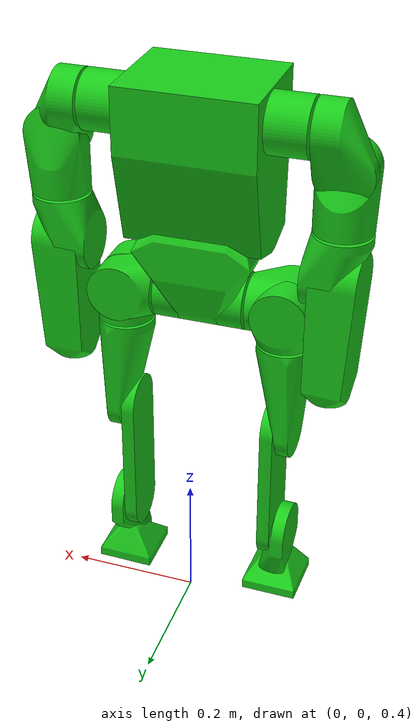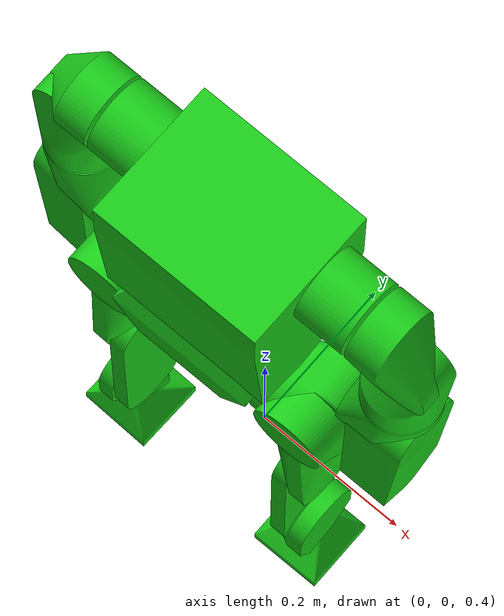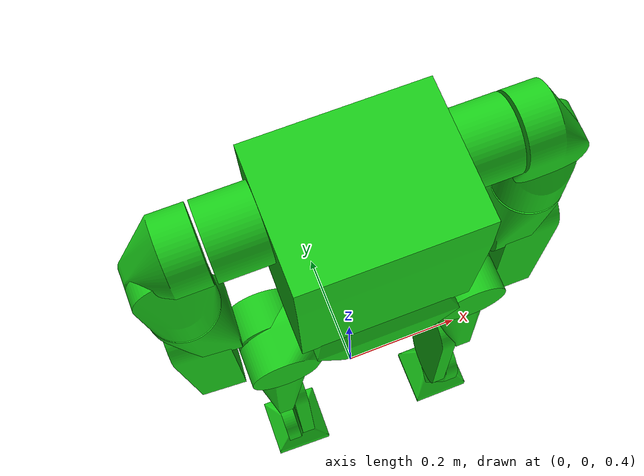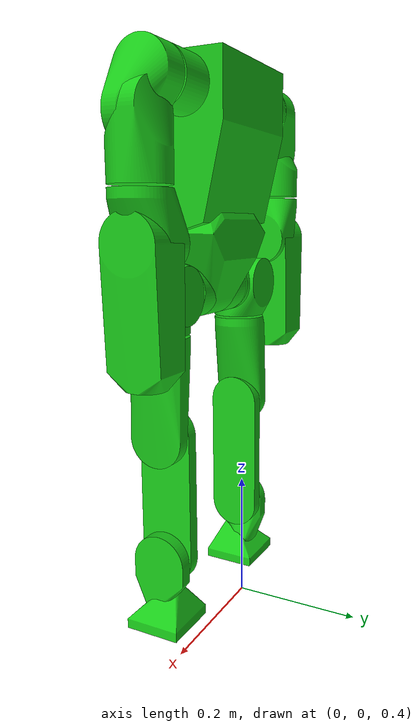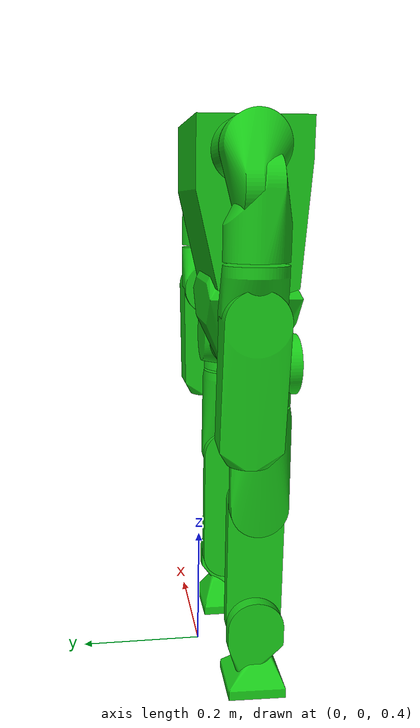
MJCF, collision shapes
<mujoco model="MuJoCo Model">
  <compiler angle="radian" meshdir="assets/"/>
  <size nconmax="4096" njmax="20000"/>

  <asset>
    <mesh name="Ankle" file="Ankle.stl"/>
    <mesh name="Ankle_collision" file="Ankle_collision.stl"/>
    <mesh name="Foot" file="Foot.stl"/>
    <mesh name="Foot_collision" file="Foot_collision.stl"/>
    <mesh name="Hip" file="Hip.stl"/>
    <mesh name="Hip_collision" file="Hip_collision.stl"/>
    <mesh name="Hip_Pitch" file="Hip_Pitch.stl"/>
    <mesh name="Hip_Pitch_collision" file="Hip_Pitch_collision.stl"/>
    <mesh name="Hip_Roll" file="Hip_Roll.stl"/>
    <mesh name="Hip_Roll_collision" file="Hip_Roll_collision.stl"/>
    <mesh name="Part_1" file="Part_1.stl"/>
    <mesh name="Part_1_collision" file="Part_1_collision.stl"/>
    <mesh name="Part_2" file="Part_2.stl"/>
    <mesh name="Part_2_collision" file="Part_2_collision.stl"/>
    <mesh name="Part_2_1" file="Part_2_1.stl"/>
    <mesh name="Part_2_1_collision" file="Part_2_1_collision.stl"/>
    <mesh name="Part_3" file="Part_3.stl"/>
    <mesh name="Part_3_collision" file="Part_3_collision.stl"/>
    <mesh name="Part_4" file="Part_4.stl"/>
    <mesh name="Part_4_collision" file="Part_4_collision.stl"/>
    <mesh name="Part_5" file="Part_5.stl"/>
    <mesh name="Part_5_collision" file="Part_5_collision.stl"/>
    <mesh name="Pelvis" file="Pelvis.stl"/>
    <mesh name="Pelvis_collision" file="Pelvis_collision.stl"/>
    <mesh name="Shin" file="Shin.stl"/>
    <mesh name="Shin_collision" file="Shin_collision.stl"/>
    <mesh name="Thigh" file="Thigh.stl"/>
    <mesh name="Thigh_collision" file="Thigh_collision.stl"/>
  </asset>

  <worldbody>
    <body name="base" pos="0 0 1">
      <joint name="base_free" type="free"/>
      <frame name="_mount">
        <body name="root">
          <body name="pelvis">
            <inertial pos="0 -0.0675224 -0.0165033" quat="0.998412 -0.0563392 0 0" mass="4.24496" diaginertia="0.0142013 0.0134717 0.010043"/>
            <geom pos="0 -0.07 -0.0161376" type="mesh" rgba="0.647059 0.647059 0.647059 1" mesh="Pelvis" contype="0" conaffinity="0" group="2"/>
            <geom pos="0 -0.07 -0.0161376" type="mesh" mesh="Pelvis_collision" rgba="0.1 0.8 0.1 0.22" contype="0" conaffinity="1" group="3" condim="3" friction="1.0 0.005 0.0001"/>
            <body name="hip_1" pos="0.03 -0.07 -0.0791376">
              <inertial pos="0.02 0 0" mass="0.114847" diaginertia="0.000203049 0.000116837 0.000116837"/>
              <geom pos="0.098 0 -0.318" type="mesh" rgba="0.980392 0.713726 0.00392157 1" mesh="Hip" contype="0" conaffinity="0" group="2"/>
              <geom pos="0.098 0 -0.318" type="mesh" mesh="Hip_collision" rgba="0.1 0.8 0.1 0.22" contype="0" conaffinity="1" group="3" condim="3" friction="1.0 0.005 0.0001"/>
              <body name="hip_pitch_1" pos="0.04 0 0">
                <inertial pos="0.044959 0.0174626 -3.01048e-12" quat="0.399887 0.399887 0.583173 0.583173" mass="0.205193" diaginertia="0.000419309 0.000297906 0.000280298"/>
                <joint name="hip_pitch_1" pos="0 0 0" axis="1 0 0"/>
                <geom pos="0.058 0 -0.318" quat="1 0 0 0" type="mesh" rgba="0.498039 0.498039 0.498039 1" mesh="Hip_Pitch" contype="0" conaffinity="0" group="2"/>
                <geom pos="0.058 0 -0.318" quat="1 0 0 0" type="mesh" mesh="Hip_Pitch_collision" rgba="0.1 0.8 0.1 0.22" contype="0" conaffinity="1" group="3" condim="3" friction="1.0 0.005 0.0001"/>
                <body name="hip_roll_1" pos="0.058 0.002 0">
                  <inertial pos="4.91788e-12 -0.0124546 -0.0250019" quat="0.68358 0.180882 -0.180882 0.68358" mass="0.342742" diaginertia="0.000622632 0.000452239 0.000414222"/>
                  <joint name="hip_roll_1" pos="0 0 0" axis="0 1 0"/>
                  <geom pos="0 -0.002 -0.318" quat="1 0 0 0" type="mesh" rgba="0.972549 0.529412 0.00392157 1" mesh="Hip_Roll" contype="0" conaffinity="0" group="2"/>
                  <geom pos="0 -0.002 -0.318" quat="1 0 0 0" type="mesh" mesh="Hip_Roll_collision" rgba="0.1 0.8 0.1 0.22" contype="0" conaffinity="1" group="3" condim="3" friction="1.0 0.005 0.0001"/>
                  <body name="thigh_1" pos="0 -0.002 -0.058">
                    <inertial pos="0.00741014 -0.00071203 -0.0734583" quat="0.999433 -0.0094094 -0.0323113 -0.00123905" mass="0.395503" diaginertia="0.0014547 0.00120217 0.000391149"/>
                    <joint name="yaw_1" pos="0 0 0" axis="0 0 1"/>
                    <geom pos="0 0 -0.26" type="mesh" rgba="0.768627 0.886275 0.952941 1" mesh="Thigh" contype="0" conaffinity="0" group="2"/>
                    <geom pos="0 0 -0.26" type="mesh" mesh="Thigh_collision" rgba="0.1 0.8 0.1 0.22" contype="0" conaffinity="1" group="3" condim="3" friction="1.0 0.005 0.0001"/>
                    <body name="shin_1" pos="0.002 0 -0.16">
                      <inertial pos="-0.0164976 0 -0.12692" quat="0.99998 0 -0.00632508 0" mass="0.696938" diaginertia="0.0038417 0.00336971 0.000508003"/>
                      <joint name="knee_1" pos="0 0 0" axis="1 0 0"/>
                      <geom pos="-0.002 0 -0.1" type="mesh" rgba="0.231373 0.380392 0.705882 1" mesh="Shin" contype="0" conaffinity="0" group="2"/>
                      <geom pos="-0.002 0 -0.1" type="mesh" mesh="Shin_collision" rgba="0.1 0.8 0.1 0.22" contype="0" conaffinity="1" group="3" condim="3" friction="1.0 0.005 0.0001"/>
                      <body name="ankle_1" pos="-0.004 0 -0.2">
                        <inertial pos="0.0130536 -0.00173308 -0.0126928" quat="0.994516 -0.098411 0.035132 -0.00437492" mass="0.328127" diaginertia="0.00054463 0.000373667 0.000212892"/>
                        <joint name="ankle_pitch_1" pos="0 0 0" axis="-1 0 0"/>
                        <geom pos="0.002 0 0.1" type="mesh" rgba="0.647059 0.647059 0.647059 1" mesh="Ankle" contype="0" conaffinity="0" group="2"/>
                        <geom pos="0.002 0 0.1" type="mesh" mesh="Ankle_collision" rgba="0.1 0.8 0.1 0.22" contype="0" conaffinity="1" group="3" condim="3" friction="1.0 0.005 0.0001"/>
                        <body name="foot_1" pos="0.002 0.002 -0.069" quat="0.999967 0 -0.00816426 0">
                          <inertial pos="0 -3.04468e-05 -0.0288044" quat="-0.0312858 0.706414 -0.0312858 0.706414" mass="0.38693" diaginertia="0.000471902 0.00028466 0.000284384"/>
                          <joint name="ankle_roll_1" pos="0 0 0" axis="0 1 0"/>
                          <geom pos="0 -0.002 0.169" quat="1 0 0 0" type="mesh" rgba="0.615686 0.811765 0.929412 1" mesh="Foot" contype="0" conaffinity="0" group="2"/>
                          <geom pos="0 -0.002 0.169" quat="1 0 0 0" type="mesh" mesh="Foot_collision" rgba="0.1 0.8 0.1 0.22" contype="0" conaffinity="1" group="3" condim="3" friction="1.0 0.005 0.0001"/>
                        </body>
                      </body>
                    </body>
                  </body>
                </body>
              </body>
            </body>
            <body name="hip" pos="-0.03 -0.07 -0.0791376" quat="1.76038e-12 1.32679e-06 1 1.32679e-06">
              <inertial pos="0.02 0 0" mass="0.114847" diaginertia="0.000203049 0.000116837 0.000116837"/>
              <geom pos="0.098 0 -0.318" type="mesh" rgba="0.980392 0.713726 0.00392157 1" mesh="Hip" contype="0" conaffinity="0" group="2"/>
              <geom pos="0.098 0 -0.318" type="mesh" mesh="Hip_collision" rgba="0.1 0.8 0.1 0.22" contype="0" conaffinity="1" group="3" condim="3" friction="1.0 0.005 0.0001"/>
              <body name="hip_pitch" pos="0.04 0 0" quat="1.32679e-06 1 0 0">
                <inertial pos="0.044959 0.0174626 -3.01048e-12" quat="0.399887 0.399887 0.583173 0.583173" mass="0.205193" diaginertia="0.000419309 0.000297906 0.000280298"/>
                <joint name="hip_pitch" pos="0 0 0" axis="-1 0 0"/>
                <geom pos="0.058 0 -0.318" quat="1 0 0 0" type="mesh" rgba="0.498039 0.498039 0.498039 1" mesh="Hip_Pitch" contype="0" conaffinity="0" group="2"/>
                <geom pos="0.058 0 -0.318" quat="1 0 0 0" type="mesh" mesh="Hip_Pitch_collision" rgba="0.1 0.8 0.1 0.22" contype="0" conaffinity="1" group="3" condim="3" friction="1.0 0.005 0.0001"/>
                <body name="hip_roll" pos="0.058 0.002 0">
                  <inertial pos="4.91788e-12 -0.0124546 -0.0250019" quat="0.68358 0.180882 -0.180882 0.68358" mass="0.342742" diaginertia="0.000622632 0.000452239 0.000414222"/>
                  <joint name="hip_roll" pos="0 0 0" axis="0 -1 0"/>
                  <geom pos="0 -0.002 -0.318" quat="1 0 0 0" type="mesh" rgba="0.972549 0.529412 0.00392157 1" mesh="Hip_Roll" contype="0" conaffinity="0" group="2"/>
                  <geom pos="0 -0.002 -0.318" quat="1 0 0 0" type="mesh" mesh="Hip_Roll_collision" rgba="0.1 0.8 0.1 0.22" contype="0" conaffinity="1" group="3" condim="3" friction="1.0 0.005 0.0001"/>
                  <body name="thigh" pos="0 -0.002 -0.058" quat="0.999935 0 0 -0.0113648">
                    <inertial pos="0.00741014 -0.00071203 -0.0734583" quat="0.999433 -0.0094094 -0.0323113 -0.00123905" mass="0.395503" diaginertia="0.0014547 0.00120217 0.000391149"/>
                    <joint name="yaw" pos="0 0 0" axis="0 0 -1"/>
                    <geom pos="0 0 -0.26" type="mesh" rgba="0.768627 0.886275 0.952941 1" mesh="Thigh" contype="0" conaffinity="0" group="2"/>
                    <geom pos="0 0 -0.26" type="mesh" mesh="Thigh_collision" rgba="0.1 0.8 0.1 0.22" contype="0" conaffinity="1" group="3" condim="3" friction="1.0 0.005 0.0001"/>
                    <body name="shin" pos="0.002 0 -0.16">
                      <inertial pos="-0.0164976 0 -0.12692" quat="0.99998 0 -0.00632508 0" mass="0.696938" diaginertia="0.0038417 0.00336971 0.000508003"/>
                      <joint name="knee" pos="0 0 0" axis="-1 0 0"/>
                      <geom pos="-0.002 0 -0.1" type="mesh" rgba="0.231373 0.380392 0.705882 1" mesh="Shin" contype="0" conaffinity="0" group="2"/>
                      <geom pos="-0.002 0 -0.1" type="mesh" mesh="Shin_collision" rgba="0.1 0.8 0.1 0.22" contype="0" conaffinity="1" group="3" condim="3" friction="1.0 0.005 0.0001"/>
                      <body name="ankle" pos="-0.004 0 -0.2" quat="1 0 0 0">
                        <inertial pos="0.0130536 -0.00173308 -0.0126928" quat="0.994516 -0.098411 0.035132 -0.00437492" mass="0.328127" diaginertia="0.00054463 0.000373667 0.000212892"/>
                        <joint name="ankle_pitch" pos="0 0 0" axis="1 0 0"/>
                        <geom pos="0.002 0 0.1" type="mesh" rgba="0.647059 0.647059 0.647059 1" mesh="Ankle" contype="0" conaffinity="0" group="2"/>
                        <geom pos="0.002 0 0.1" type="mesh" mesh="Ankle_collision" rgba="0.1 0.8 0.1 0.22" contype="0" conaffinity="1" group="3" condim="3" friction="1.0 0.005 0.0001"/>
                        <body name="foot" pos="0.002 0.002 -0.069" quat="0.999967 0 -0.00816426 0">
                          <inertial pos="0 -3.04468e-05 -0.0288044" quat="-0.0312858 0.706414 -0.0312858 0.706414" mass="0.38693" diaginertia="0.000471902 0.00028466 0.000284384"/>
                          <joint name="ankle_roll" pos="0 0 0" axis="0 -1 0"/>
                          <geom pos="0 -0.002 0.169" quat="1 0 0 0" type="mesh" rgba="0.615686 0.811765 0.929412 1" mesh="Foot" contype="0" conaffinity="0" group="2"/>
                          <geom pos="0 -0.002 0.169" quat="1 0 0 0" type="mesh" mesh="Foot_collision" rgba="0.1 0.8 0.1 0.22" contype="0" conaffinity="1" group="3" condim="3" friction="1.0 0.005 0.0001"/>
                        </body>
                      </body>
                    </body>
                  </body>
                </body>
              </body>
            </body>
            <body name="part_2" pos="-0.0589806 -0.07 0.0538186">
              <inertial pos="0.0589806 0.0116765 0.108266" quat="0.705692 -0.0447117 0.0447117 0.705692" mass="2.996" diaginertia="0.0335624 0.0270255 0.0240902"/>
              <joint name="revolute_1" pos="0 0 0" axis="1 0 0"/>
              <geom pos="0.0589806 0 -0.0699562" quat="1 0 0 0" type="mesh" rgba="0.917647 0.917647 0.917647 1" mesh="Part_2" contype="0" conaffinity="0" group="2"/>
              <geom pos="0.0589806 0 -0.0699562" quat="1 0 0 0" type="mesh" mesh="Part_2_collision" rgba="0.1 0.8 0.1 0.22" contype="0" conaffinity="1" group="3" condim="3" friction="1.0 0.005 0.0001"/>
              <body name="part_1" pos="0.163045 0.0301369 0.164551">
                <inertial pos="0.03 0 0" mass="0.17227" diaginertia="0.000304573 0.000203968 0.000203968"/>
                <geom pos="0.10811 0 0" type="mesh" rgba="0.615686 0.811765 0.929412 1" mesh="Part_1" contype="0" conaffinity="0" group="2"/>
                <geom pos="0.10811 0 0" type="mesh" mesh="Part_1_collision" rgba="0.1 0.8 0.1 0.22" contype="0" conaffinity="1" group="3" condim="3" friction="1.0 0.005 0.0001"/>
                <body name="part_2_1" pos="0.06 0 0">
                  <inertial pos="0.0329553 -0.00486958 -0.0195905" quat="0.983005 -0.0982669 -0.126494 0.0896855" mass="0.179724" diaginertia="0.000409968 0.000383742 0.000188393"/>
                  <joint name="shoulder_yaw" pos="0 0 0" axis="1 0 0"/>
                  <geom pos="0.0481099 0 0" type="mesh" rgba="0.647059 0.647059 0.647059 1" mesh="Part_2_1" contype="0" conaffinity="0" group="2"/>
                  <geom pos="0.0481099 0 0" type="mesh" mesh="Part_2_1_collision" rgba="0.1 0.8 0.1 0.22" contype="0" conaffinity="1" group="3" condim="3" friction="1.0 0.005 0.0001"/>
                  <body name="part_3" pos="0.0481099 -0.002 -0.054">
                    <inertial pos="-2.07904e-11 0.00576515 -0.0427323" quat="0.701822 -0.0862896 0.0862896 0.701822" mass="0.236776" diaginertia="0.000524759 0.000429886 0.000362666"/>
                    <joint name="shoulder_roll" pos="0 0 0" axis="0 1 0"/>
                    <geom pos="0 0.002 0.054" quat="1 0 0 0" type="mesh" rgba="0.917647 0.917647 0.917647 1" mesh="Part_3" contype="0" conaffinity="0" group="2"/>
                    <geom pos="0 0.002 0.054" quat="1 0 0 0" type="mesh" mesh="Part_3_collision" rgba="0.1 0.8 0.1 0.22" contype="0" conaffinity="1" group="3" condim="3" friction="1.0 0.005 0.0001"/>
                    <body name="part_4" pos="0 0.002 -0.094">
                      <inertial pos="-0.0227382 -4.06552e-12 -0.0592339" quat="0.996769 0 0.0803246 0" mass="0.763075" diaginertia="0.00123728 0.000926563 0.000663713"/>
                      <joint name="shoulder_pitch" pos="0 0 0" axis="0 0 1"/>
                      <geom pos="0 0 0.148" type="mesh" rgba="0.768627 0.886275 0.952941 1" mesh="Part_4" contype="0" conaffinity="0" group="2"/>
                      <geom pos="0 0 0.148" type="mesh" mesh="Part_4_collision" rgba="0.1 0.8 0.1 0.22" contype="0" conaffinity="1" group="3" condim="3" friction="1.0 0.005 0.0001"/>
                      <body name="part_5" pos="-0.002 0 -0.072" quat="0.999968 -0.00800536 0 0">
                        <inertial pos="0.000114307 0 -0.0911714" quat="0.998341 0 0.0575707 0" mass="2.51045" diaginertia="0.00990149 0.00900951 0.00243744"/>
                        <joint name="elbow" pos="0 0 0" axis="1 0 0"/>
                        <geom pos="0.002 0 0.22" type="mesh" rgba="0.972549 0.529412 0.00392157 1" mesh="Part_5" contype="0" conaffinity="0" group="2"/>
                        <geom pos="0.002 0 0.22" type="mesh" mesh="Part_5_collision" rgba="0.1 0.8 0.1 0.22" contype="0" conaffinity="1" group="3" condim="3" friction="1.0 0.005 0.0001"/>
                      </body>
                    </body>
                  </body>
                </body>
              </body>
              <body name="part_1_1" pos="-0.0450837 0.0301369 0.164551" quat="1.76038e-12 1.32679e-06 1 1.32679e-06">
                <inertial pos="0.03 0 0" mass="0.17227" diaginertia="0.000304573 0.000203968 0.000203968"/>
                <geom pos="0.10811 0 0" type="mesh" rgba="0.615686 0.811765 0.929412 1" mesh="Part_1" contype="0" conaffinity="0" group="2"/>
                <geom pos="0.10811 0 0" type="mesh" mesh="Part_1_collision" rgba="0.1 0.8 0.1 0.22" contype="0" conaffinity="1" group="3" condim="3" friction="1.0 0.005 0.0001"/>
                <body name="part_2_2" pos="0.06 0 0" quat="1.32679e-06 1 0 0">
                  <inertial pos="0.0329553 -0.00486958 -0.0195905" quat="0.983005 -0.0982669 -0.126494 0.0896855" mass="0.179724" diaginertia="0.000409968 0.000383742 0.000188393"/>
                  <joint name="shoulder_yaw_1" pos="0 0 0" axis="-1 0 0"/>
                  <geom pos="0.0481099 0 0" type="mesh" rgba="0.647059 0.647059 0.647059 1" mesh="Part_2_1" contype="0" conaffinity="0" group="2"/>
                  <geom pos="0.0481099 0 0" type="mesh" mesh="Part_2_1_collision" rgba="0.1 0.8 0.1 0.22" contype="0" conaffinity="1" group="3" condim="3" friction="1.0 0.005 0.0001"/>
                  <body name="part_3_1" pos="0.0481099 -0.002 -0.054">
                    <inertial pos="-2.07904e-11 0.00576515 -0.0427323" quat="0.701822 -0.0862896 0.0862896 0.701822" mass="0.236776" diaginertia="0.000524759 0.000429886 0.000362666"/>
                    <joint name="shoulder_roll_1" pos="0 0 0" axis="0 -1 0"/>
                    <geom pos="0 0.002 0.054" quat="1 0 0 0" type="mesh" rgba="0.917647 0.917647 0.917647 1" mesh="Part_3" contype="0" conaffinity="0" group="2"/>
                    <geom pos="0 0.002 0.054" quat="1 0 0 0" type="mesh" mesh="Part_3_collision" rgba="0.1 0.8 0.1 0.22" contype="0" conaffinity="1" group="3" condim="3" friction="1.0 0.005 0.0001"/>
                    <body name="part_4_1" pos="0 0.002 -0.094" quat="0.999539 0 0 -0.0303573">
                      <inertial pos="-0.0227382 -4.06552e-12 -0.0592339" quat="0.996769 0 0.0803246 0" mass="0.763075" diaginertia="0.00123728 0.000926563 0.000663713"/>
                      <joint name="shoulder_pitch_1" pos="0 0 0" axis="0 0 -1"/>
                      <geom pos="0 0 0.148" type="mesh" rgba="0.768627 0.886275 0.952941 1" mesh="Part_4" contype="0" conaffinity="0" group="2"/>
                      <geom pos="0 0 0.148" type="mesh" mesh="Part_4_collision" rgba="0.1 0.8 0.1 0.22" contype="0" conaffinity="1" group="3" condim="3" friction="1.0 0.005 0.0001"/>
                      <body name="part_5_1" pos="-0.002 0 -0.072" quat="0.999968 -0.00800536 0 0">
                        <inertial pos="0.000114307 0 -0.0911714" quat="0.998341 0 0.0575707 0" mass="2.51045" diaginertia="0.00990149 0.00900951 0.00243744"/>
                        <joint name="elbow_1" pos="0 0 0" axis="-1 0 0"/>
                        <geom pos="0.002 0 0.22" type="mesh" rgba="0.972549 0.529412 0.00392157 1" mesh="Part_5" contype="0" conaffinity="0" group="2"/>
                        <geom pos="0.002 0 0.22" type="mesh" mesh="Part_5_collision" rgba="0.1 0.8 0.1 0.22" contype="0" conaffinity="1" group="3" condim="3" friction="1.0 0.005 0.0001"/>
                      </body>
                    </body>
                  </body>
                </body>
              </body>
            </body>
          </body>
        </body>
      </frame>
    </body>
  </worldbody>

  <contact>
    <exclude body1="pelvis" body2="hip_1"/>
    <exclude body1="pelvis" body2="hip"/>
    <exclude body1="pelvis" body2="part_2"/>
    <exclude body1="hip_1" body2="hip_pitch_1"/>
    <exclude body1="hip_pitch_1" body2="hip_roll_1"/>
    <exclude body1="hip_roll_1" body2="thigh_1"/>
    <exclude body1="thigh_1" body2="shin_1"/>
    <exclude body1="shin_1" body2="ankle_1"/>
    <exclude body1="ankle_1" body2="foot_1"/>
    <exclude body1="hip" body2="hip_pitch"/>
    <exclude body1="hip_pitch" body2="hip_roll"/>
    <exclude body1="hip_roll" body2="thigh"/>
    <exclude body1="thigh" body2="shin"/>
    <exclude body1="shin" body2="ankle"/>
    <exclude body1="ankle" body2="foot"/>
    <exclude body1="part_2" body2="part_1"/>
    <exclude body1="part_2" body2="part_1_1"/>
    <exclude body1="part_1" body2="part_2_1"/>
    <exclude body1="part_2_1" body2="part_3"/>
    <exclude body1="part_3" body2="part_4"/>
    <exclude body1="part_4" body2="part_5"/>
    <exclude body1="part_1_1" body2="part_2_2"/>
    <exclude body1="part_2_2" body2="part_3_1"/>
    <exclude body1="part_3_1" body2="part_4_1"/>
    <exclude body1="part_4_1" body2="part_5_1"/>
  </contact>

  <actuator>
    <general name="hip_pitch_1_motor" joint="hip_pitch_1" ctrlrange="-36 36" forcelimited="true" forcerange="-36 36"/>
    <general name="hip_roll_1_motor" joint="hip_roll_1" ctrlrange="-36 36" forcelimited="true" forcerange="-36 36"/>
    <general name="yaw_1_motor" joint="yaw_1" ctrlrange="-36 36" forcelimited="true" forcerange="-36 36"/>
    <general name="knee_1_motor" joint="knee_1" ctrlrange="-36 36" forcelimited="true" forcerange="-36 36" gear="-1 0 0 0 0 0"/>
    <general name="ankle_pitch_1_motor" joint="ankle_pitch_1" ctrlrange="-12 12" forcelimited="true" forcerange="-12 12"/>
    <general name="ankle_roll_1_motor" joint="ankle_roll_1" ctrlrange="-12 12" forcelimited="true" forcerange="-12 12"/>
    <general name="hip_pitch_motor" joint="hip_pitch" ctrlrange="-36 36" forcelimited="true" forcerange="-36 36"/>
    <general name="hip_roll_motor" joint="hip_roll" ctrlrange="-36 36" forcelimited="true" forcerange="-36 36"/>
    <general name="yaw_motor" joint="yaw" ctrlrange="-36 36" forcelimited="true" forcerange="-36 36"/>
    <general name="knee_motor" joint="knee" ctrlrange="-36 36" forcelimited="true" forcerange="-36 36" gear="-1 0 0 0 0 0"/>
    <general name="ankle_pitch_motor" joint="ankle_pitch" ctrlrange="-12 12" forcelimited="true" forcerange="-12 12"/>
    <general name="ankle_roll_motor" joint="ankle_roll" ctrlrange="-12 12" forcelimited="true" forcerange="-12 12"/>
    <general name="revolute_1_motor" joint="revolute_1" ctrlrange="-36 36" forcelimited="true" forcerange="-36 36"/>
    <general name="shoulder_yaw_motor" joint="shoulder_yaw" ctrlrange="-36 36" forcelimited="true" forcerange="-36 36"/>
    <general name="shoulder_roll_motor" joint="shoulder_roll" ctrlrange="-36 36" forcelimited="true" forcerange="-36 36"/>
    <general name="shoulder_pitch_motor" joint="shoulder_pitch" ctrlrange="-36 36" forcelimited="true" forcerange="-36 36"/>
    <general name="elbow_motor" joint="elbow" ctrlrange="-36 36" forcelimited="true" forcerange="-36 36" gear="-1 0 0 0 0 0"/>
    <general name="shoulder_yaw_1_motor" joint="shoulder_yaw_1" ctrlrange="-36 36" forcelimited="true" forcerange="-36 36"/>
    <general name="shoulder_roll_1_motor" joint="shoulder_roll_1" ctrlrange="-36 36" forcelimited="true" forcerange="-36 36"/>
    <general name="shoulder_pitch_1_motor" joint="shoulder_pitch_1" ctrlrange="-36 36" forcelimited="true" forcerange="-36 36"/>
    <general name="elbow_1_motor" joint="elbow_1" ctrlrange="-36 36" forcelimited="true" forcerange="-36 36" gear="-1 0 0 0 0 0"/>
  </actuator>
</mujoco>
